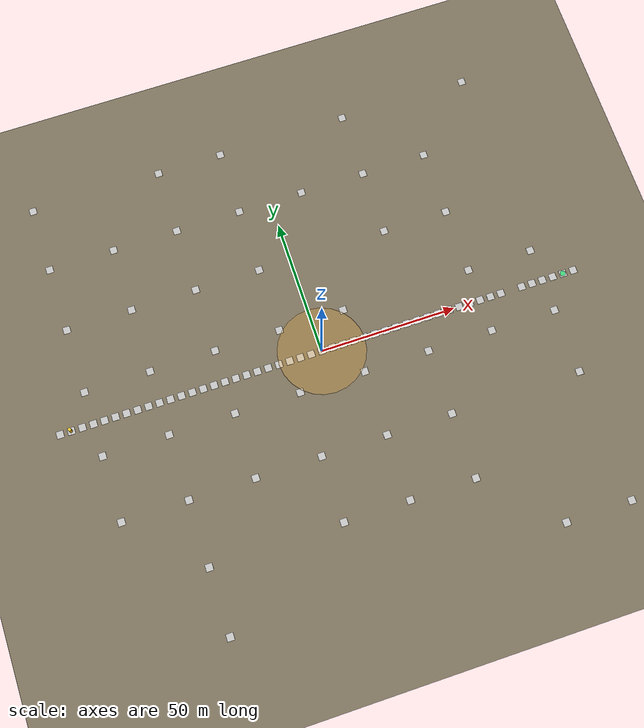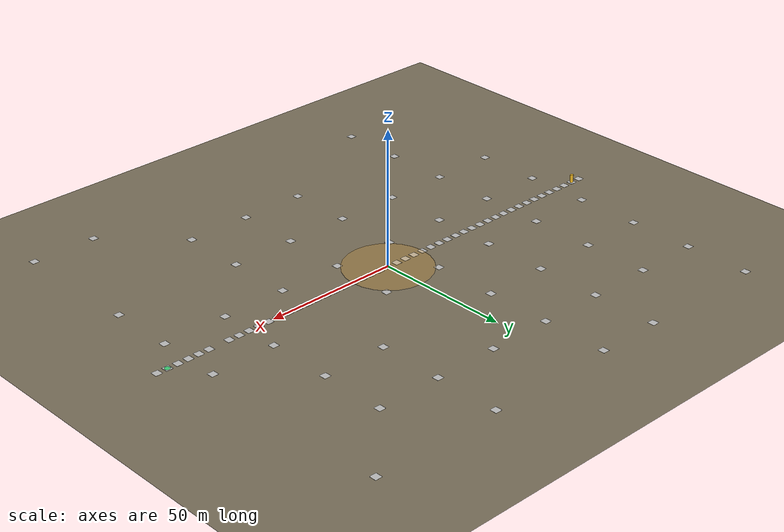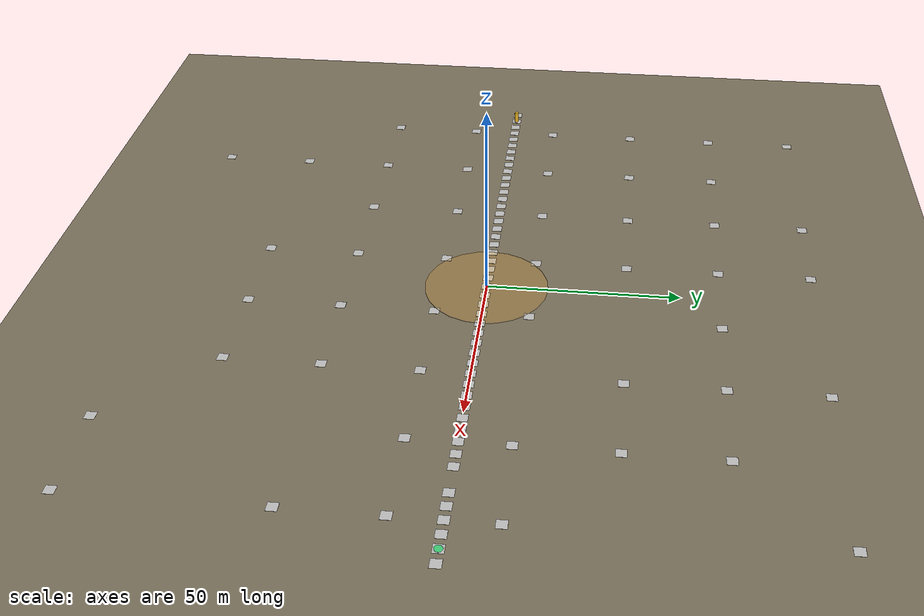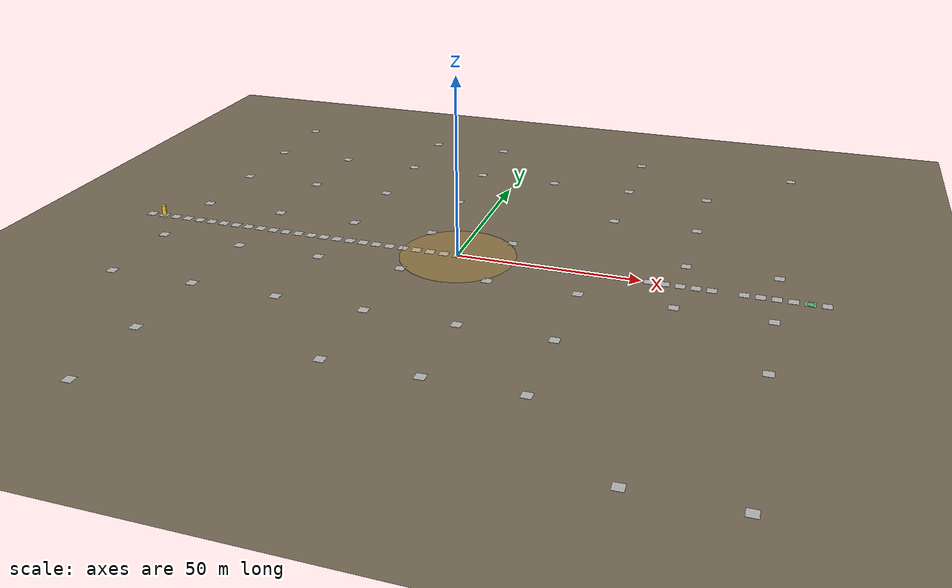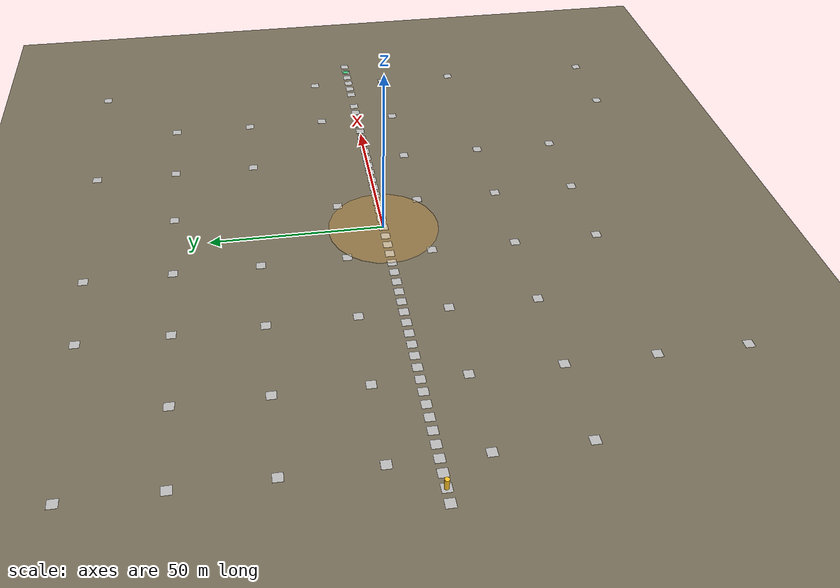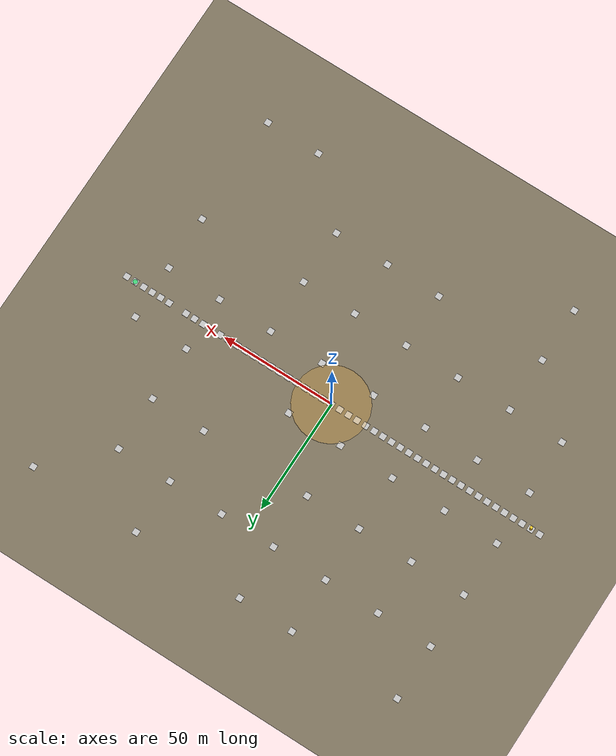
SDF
<sdf version="1.6">
 <world name="india">
  <gravity>0 0 -9.81</gravity>
  <scene>
   <ambient>0.5 0.52 0.55 1</ambient>
   <background>0.74 0.77 0.80 1</background>
   <shadows>true</shadows>
   <fog>
    <color>0.74 0.77 0.80 1</color>
    <type>linear</type>
    <start>260</start>
    <end>900</end>
    <density>0.002</density>
   </fog>
  </scene>
  <light name="sun" type="directional">
   <pose>0 0 40 0 0 0</pose>
   <diffuse>0.9 0.9 0.9 1</diffuse>
   <specular>0.2 0.2 0.2 1</specular>
   <direction>-0.4 0.3 -0.9</direction>
  </light>
  <model name="ground">
   <static>true</static>
   <link name="link">
    <collision name="c"><geometry><plane><normal>0 0 1</normal><size>400 400</size></plane></geometry></collision>
    <visual name="v">
     <geometry><plane><normal>0 0 1</normal><size>400 400</size></plane></geometry>
     <material><ambient>0.46 0.42 0.34</ambient><diffuse>0.46 0.42 0.34</diffuse></material>
    </visual>
   </link>
  </model>
  <model name="hard_patch">
   <static>true</static>
   <pose>0.000 0.000 0.03 0 0 0</pose>
   <link name="l">
    <visual name="v">
     <geometry><cylinder><radius>16.0</radius><length>0.3</length></cylinder></geometry>
     <material><ambient>0.96 0.62 0.04 0.14</ambient><diffuse>0.96 0.62 0.04 0.14</diffuse></material>
    </visual>
   </link>
  </model>
  <model name="aruco0">
   <static>true</static>
   <pose>-96.000 0.000 0.02 0 0 0</pose>
   <link name="l">
    <visual name="v">
     <geometry><box><size>2.6 2.6 0.02</size></box></geometry>
     <material>
      <script><uri>file://materials/scripts</uri><uri>file://materials/textures</uri><name>aruco/0</name></script>
     </material>
    </visual>
   </link>
  </model>
  <model name="aruco1">
   <static>true</static>
   <pose>-92.000 0.000 0.02 0 0 0</pose>
   <link name="l">
    <visual name="v">
     <geometry><box><size>2.6 2.6 0.02</size></box></geometry>
     <material>
      <script><uri>file://materials/scripts</uri><uri>file://materials/textures</uri><name>aruco/1</name></script>
     </material>
    </visual>
   </link>
  </model>
  <model name="aruco2">
   <static>true</static>
   <pose>-88.000 0.000 0.02 0 0 0</pose>
   <link name="l">
    <visual name="v">
     <geometry><box><size>2.6 2.6 0.02</size></box></geometry>
     <material>
      <script><uri>file://materials/scripts</uri><uri>file://materials/textures</uri><name>aruco/2</name></script>
     </material>
    </visual>
   </link>
  </model>
  <model name="aruco3">
   <static>true</static>
   <pose>-84.000 0.000 0.02 0 0 0</pose>
   <link name="l">
    <visual name="v">
     <geometry><box><size>2.6 2.6 0.02</size></box></geometry>
     <material>
      <script><uri>file://materials/scripts</uri><uri>file://materials/textures</uri><name>aruco/3</name></script>
     </material>
    </visual>
   </link>
  </model>
  <model name="aruco4">
   <static>true</static>
   <pose>-80.000 0.000 0.02 0 0 0</pose>
   <link name="l">
    <visual name="v">
     <geometry><box><size>2.6 2.6 0.02</size></box></geometry>
     <material>
      <script><uri>file://materials/scripts</uri><uri>file://materials/textures</uri><name>aruco/4</name></script>
     </material>
    </visual>
   </link>
  </model>
  <model name="aruco5">
   <static>true</static>
   <pose>-76.000 0.000 0.02 0 0 0</pose>
   <link name="l">
    <visual name="v">
     <geometry><box><size>2.6 2.6 0.02</size></box></geometry>
     <material>
      <script><uri>file://materials/scripts</uri><uri>file://materials/textures</uri><name>aruco/5</name></script>
     </material>
    </visual>
   </link>
  </model>
  <model name="aruco6">
   <static>true</static>
   <pose>-72.000 0.000 0.02 0 0 0</pose>
   <link name="l">
    <visual name="v">
     <geometry><box><size>2.6 2.6 0.02</size></box></geometry>
     <material>
      <script><uri>file://materials/scripts</uri><uri>file://materials/textures</uri><name>aruco/6</name></script>
     </material>
    </visual>
   </link>
  </model>
  <model name="aruco7">
   <static>true</static>
   <pose>-68.000 0.000 0.02 0 0 0</pose>
   <link name="l">
    <visual name="v">
     <geometry><box><size>2.6 2.6 0.02</size></box></geometry>
     <material>
      <script><uri>file://materials/scripts</uri><uri>file://materials/textures</uri><name>aruco/7</name></script>
     </material>
    </visual>
   </link>
  </model>
  <model name="aruco8">
   <static>true</static>
   <pose>-64.000 0.000 0.02 0 0 0</pose>
   <link name="l">
    <visual name="v">
     <geometry><box><size>2.6 2.6 0.02</size></box></geometry>
     <material>
      <script><uri>file://materials/scripts</uri><uri>file://materials/textures</uri><name>aruco/8</name></script>
     </material>
    </visual>
   </link>
  </model>
  <model name="aruco9">
   <static>true</static>
   <pose>-60.000 0.000 0.02 0 0 0</pose>
   <link name="l">
    <visual name="v">
     <geometry><box><size>2.6 2.6 0.02</size></box></geometry>
     <material>
      <script><uri>file://materials/scripts</uri><uri>file://materials/textures</uri><name>aruco/9</name></script>
     </material>
    </visual>
   </link>
  </model>
  <model name="aruco10">
   <static>true</static>
   <pose>-56.000 0.000 0.02 0 0 0</pose>
   <link name="l">
    <visual name="v">
     <geometry><box><size>2.6 2.6 0.02</size></box></geometry>
     <material>
      <script><uri>file://materials/scripts</uri><uri>file://materials/textures</uri><name>aruco/10</name></script>
     </material>
    </visual>
   </link>
  </model>
  <model name="aruco11">
   <static>true</static>
   <pose>-52.000 0.000 0.02 0 0 0</pose>
   <link name="l">
    <visual name="v">
     <geometry><box><size>2.6 2.6 0.02</size></box></geometry>
     <material>
      <script><uri>file://materials/scripts</uri><uri>file://materials/textures</uri><name>aruco/11</name></script>
     </material>
    </visual>
   </link>
  </model>
  <model name="aruco12">
   <static>true</static>
   <pose>-48.000 0.000 0.02 0 0 0</pose>
   <link name="l">
    <visual name="v">
     <geometry><box><size>2.6 2.6 0.02</size></box></geometry>
     <material>
      <script><uri>file://materials/scripts</uri><uri>file://materials/textures</uri><name>aruco/12</name></script>
     </material>
    </visual>
   </link>
  </model>
  <model name="aruco13">
   <static>true</static>
   <pose>-44.000 0.000 0.02 0 0 0</pose>
   <link name="l">
    <visual name="v">
     <geometry><box><size>2.6 2.6 0.02</size></box></geometry>
     <material>
      <script><uri>file://materials/scripts</uri><uri>file://materials/textures</uri><name>aruco/13</name></script>
     </material>
    </visual>
   </link>
  </model>
  <model name="aruco14">
   <static>true</static>
   <pose>-40.000 0.000 0.02 0 0 0</pose>
   <link name="l">
    <visual name="v">
     <geometry><box><size>2.6 2.6 0.02</size></box></geometry>
     <material>
      <script><uri>file://materials/scripts</uri><uri>file://materials/textures</uri><name>aruco/14</name></script>
     </material>
    </visual>
   </link>
  </model>
  <model name="aruco15">
   <static>true</static>
   <pose>-36.000 0.000 0.02 0 0 0</pose>
   <link name="l">
    <visual name="v">
     <geometry><box><size>2.6 2.6 0.02</size></box></geometry>
     <material>
      <script><uri>file://materials/scripts</uri><uri>file://materials/textures</uri><name>aruco/15</name></script>
     </material>
    </visual>
   </link>
  </model>
  <model name="aruco16">
   <static>true</static>
   <pose>-32.000 0.000 0.02 0 0 0</pose>
   <link name="l">
    <visual name="v">
     <geometry><box><size>2.6 2.6 0.02</size></box></geometry>
     <material>
      <script><uri>file://materials/scripts</uri><uri>file://materials/textures</uri><name>aruco/16</name></script>
     </material>
    </visual>
   </link>
  </model>
  <model name="aruco17">
   <static>true</static>
   <pose>-28.000 0.000 0.02 0 0 0</pose>
   <link name="l">
    <visual name="v">
     <geometry><box><size>2.6 2.6 0.02</size></box></geometry>
     <material>
      <script><uri>file://materials/scripts</uri><uri>file://materials/textures</uri><name>aruco/17</name></script>
     </material>
    </visual>
   </link>
  </model>
  <model name="aruco18">
   <static>true</static>
   <pose>-24.000 0.000 0.02 0 0 0</pose>
   <link name="l">
    <visual name="v">
     <geometry><box><size>2.6 2.6 0.02</size></box></geometry>
     <material>
      <script><uri>file://materials/scripts</uri><uri>file://materials/textures</uri><name>aruco/18</name></script>
     </material>
    </visual>
   </link>
  </model>
  <model name="aruco19">
   <static>true</static>
   <pose>-20.000 0.000 0.02 0 0 0</pose>
   <link name="l">
    <visual name="v">
     <geometry><box><size>2.6 2.6 0.02</size></box></geometry>
     <material>
      <script><uri>file://materials/scripts</uri><uri>file://materials/textures</uri><name>aruco/19</name></script>
     </material>
    </visual>
   </link>
  </model>
  <model name="aruco20">
   <static>true</static>
   <pose>-16.000 0.000 0.02 0 0 0</pose>
   <link name="l">
    <visual name="v">
     <geometry><box><size>2.6 2.6 0.02</size></box></geometry>
     <material>
      <script><uri>file://materials/scripts</uri><uri>file://materials/textures</uri><name>aruco/20</name></script>
     </material>
    </visual>
   </link>
  </model>
  <model name="aruco21">
   <static>true</static>
   <pose>-12.000 0.000 0.02 0 0 0</pose>
   <link name="l">
    <visual name="v">
     <geometry><box><size>2.6 2.6 0.02</size></box></geometry>
     <material>
      <script><uri>file://materials/scripts</uri><uri>file://materials/textures</uri><name>aruco/21</name></script>
     </material>
    </visual>
   </link>
  </model>
  <model name="aruco22">
   <static>true</static>
   <pose>-8.000 0.000 0.02 0 0 0</pose>
   <link name="l">
    <visual name="v">
     <geometry><box><size>2.6 2.6 0.02</size></box></geometry>
     <material>
      <script><uri>file://materials/scripts</uri><uri>file://materials/textures</uri><name>aruco/22</name></script>
     </material>
    </visual>
   </link>
  </model>
  <model name="aruco23">
   <static>true</static>
   <pose>-4.000 0.000 0.02 0 0 0</pose>
   <link name="l">
    <visual name="v">
     <geometry><box><size>2.6 2.6 0.02</size></box></geometry>
     <material>
      <script><uri>file://materials/scripts</uri><uri>file://materials/textures</uri><name>aruco/23</name></script>
     </material>
    </visual>
   </link>
  </model>
  <model name="aruco24">
   <static>true</static>
   <pose>0.000 0.000 0.02 0 0 0</pose>
   <link name="l">
    <visual name="v">
     <geometry><box><size>2.6 2.6 0.02</size></box></geometry>
     <material>
      <script><uri>file://materials/scripts</uri><uri>file://materials/textures</uri><name>aruco/24</name></script>
     </material>
    </visual>
   </link>
  </model>
  <model name="aruco25">
   <static>true</static>
   <pose>4.000 0.000 0.02 0 0 0</pose>
   <link name="l">
    <visual name="v">
     <geometry><box><size>2.6 2.6 0.02</size></box></geometry>
     <material>
      <script><uri>file://materials/scripts</uri><uri>file://materials/textures</uri><name>aruco/25</name></script>
     </material>
    </visual>
   </link>
  </model>
  <model name="aruco26">
   <static>true</static>
   <pose>8.000 0.000 0.02 0 0 0</pose>
   <link name="l">
    <visual name="v">
     <geometry><box><size>2.6 2.6 0.02</size></box></geometry>
     <material>
      <script><uri>file://materials/scripts</uri><uri>file://materials/textures</uri><name>aruco/26</name></script>
     </material>
    </visual>
   </link>
  </model>
  <model name="aruco27">
   <static>true</static>
   <pose>12.000 0.000 0.02 0 0 0</pose>
   <link name="l">
    <visual name="v">
     <geometry><box><size>2.6 2.6 0.02</size></box></geometry>
     <material>
      <script><uri>file://materials/scripts</uri><uri>file://materials/textures</uri><name>aruco/27</name></script>
     </material>
    </visual>
   </link>
  </model>
  <model name="aruco28">
   <static>true</static>
   <pose>16.000 0.000 0.02 0 0 0</pose>
   <link name="l">
    <visual name="v">
     <geometry><box><size>2.6 2.6 0.02</size></box></geometry>
     <material>
      <script><uri>file://materials/scripts</uri><uri>file://materials/textures</uri><name>aruco/28</name></script>
     </material>
    </visual>
   </link>
  </model>
  <model name="aruco29">
   <static>true</static>
   <pose>20.000 0.000 0.02 0 0 0</pose>
   <link name="l">
    <visual name="v">
     <geometry><box><size>2.6 2.6 0.02</size></box></geometry>
     <material>
      <script><uri>file://materials/scripts</uri><uri>file://materials/textures</uri><name>aruco/29</name></script>
     </material>
    </visual>
   </link>
  </model>
  <model name="aruco30">
   <static>true</static>
   <pose>24.000 0.000 0.02 0 0 0</pose>
   <link name="l">
    <visual name="v">
     <geometry><box><size>2.6 2.6 0.02</size></box></geometry>
     <material>
      <script><uri>file://materials/scripts</uri><uri>file://materials/textures</uri><name>aruco/30</name></script>
     </material>
    </visual>
   </link>
  </model>
  <model name="aruco31">
   <static>true</static>
   <pose>28.000 0.000 0.02 0 0 0</pose>
   <link name="l">
    <visual name="v">
     <geometry><box><size>2.6 2.6 0.02</size></box></geometry>
     <material>
      <script><uri>file://materials/scripts</uri><uri>file://materials/textures</uri><name>aruco/31</name></script>
     </material>
    </visual>
   </link>
  </model>
  <model name="aruco32">
   <static>true</static>
   <pose>32.000 0.000 0.02 0 0 0</pose>
   <link name="l">
    <visual name="v">
     <geometry><box><size>2.6 2.6 0.02</size></box></geometry>
     <material>
      <script><uri>file://materials/scripts</uri><uri>file://materials/textures</uri><name>aruco/32</name></script>
     </material>
    </visual>
   </link>
  </model>
  <model name="aruco33">
   <static>true</static>
   <pose>36.000 0.000 0.02 0 0 0</pose>
   <link name="l">
    <visual name="v">
     <geometry><box><size>2.6 2.6 0.02</size></box></geometry>
     <material>
      <script><uri>file://materials/scripts</uri><uri>file://materials/textures</uri><name>aruco/33</name></script>
     </material>
    </visual>
   </link>
  </model>
  <model name="aruco34">
   <static>true</static>
   <pose>40.000 0.000 0.02 0 0 0</pose>
   <link name="l">
    <visual name="v">
     <geometry><box><size>2.6 2.6 0.02</size></box></geometry>
     <material>
      <script><uri>file://materials/scripts</uri><uri>file://materials/textures</uri><name>aruco/34</name></script>
     </material>
    </visual>
   </link>
  </model>
  <model name="aruco35">
   <static>true</static>
   <pose>44.000 0.000 0.02 0 0 0</pose>
   <link name="l">
    <visual name="v">
     <geometry><box><size>2.6 2.6 0.02</size></box></geometry>
     <material>
      <script><uri>file://materials/scripts</uri><uri>file://materials/textures</uri><name>aruco/35</name></script>
     </material>
    </visual>
   </link>
  </model>
  <model name="aruco36">
   <static>true</static>
   <pose>48.000 0.000 0.02 0 0 0</pose>
   <link name="l">
    <visual name="v">
     <geometry><box><size>2.6 2.6 0.02</size></box></geometry>
     <material>
      <script><uri>file://materials/scripts</uri><uri>file://materials/textures</uri><name>aruco/36</name></script>
     </material>
    </visual>
   </link>
  </model>
  <model name="aruco37">
   <static>true</static>
   <pose>52.000 0.000 0.02 0 0 0</pose>
   <link name="l">
    <visual name="v">
     <geometry><box><size>2.6 2.6 0.02</size></box></geometry>
     <material>
      <script><uri>file://materials/scripts</uri><uri>file://materials/textures</uri><name>aruco/37</name></script>
     </material>
    </visual>
   </link>
  </model>
  <model name="aruco38">
   <static>true</static>
   <pose>56.000 0.000 0.02 0 0 0</pose>
   <link name="l">
    <visual name="v">
     <geometry><box><size>2.6 2.6 0.02</size></box></geometry>
     <material>
      <script><uri>file://materials/scripts</uri><uri>file://materials/textures</uri><name>aruco/38</name></script>
     </material>
    </visual>
   </link>
  </model>
  <model name="aruco39">
   <static>true</static>
   <pose>60.000 0.000 0.02 0 0 0</pose>
   <link name="l">
    <visual name="v">
     <geometry><box><size>2.6 2.6 0.02</size></box></geometry>
     <material>
      <script><uri>file://materials/scripts</uri><uri>file://materials/textures</uri><name>aruco/39</name></script>
     </material>
    </visual>
   </link>
  </model>
  <model name="aruco40">
   <static>true</static>
   <pose>64.000 0.000 0.02 0 0 0</pose>
   <link name="l">
    <visual name="v">
     <geometry><box><size>2.6 2.6 0.02</size></box></geometry>
     <material>
      <script><uri>file://materials/scripts</uri><uri>file://materials/textures</uri><name>aruco/40</name></script>
     </material>
    </visual>
   </link>
  </model>
  <model name="aruco41">
   <static>true</static>
   <pose>68.000 0.000 0.02 0 0 0</pose>
   <link name="l">
    <visual name="v">
     <geometry><box><size>2.6 2.6 0.02</size></box></geometry>
     <material>
      <script><uri>file://materials/scripts</uri><uri>file://materials/textures</uri><name>aruco/41</name></script>
     </material>
    </visual>
   </link>
  </model>
  <model name="aruco42">
   <static>true</static>
   <pose>76.000 0.000 0.02 0 0 0</pose>
   <link name="l">
    <visual name="v">
     <geometry><box><size>2.6 2.6 0.02</size></box></geometry>
     <material>
      <script><uri>file://materials/scripts</uri><uri>file://materials/textures</uri><name>aruco/42</name></script>
     </material>
    </visual>
   </link>
  </model>
  <model name="aruco43">
   <static>true</static>
   <pose>80.000 0.000 0.02 0 0 0</pose>
   <link name="l">
    <visual name="v">
     <geometry><box><size>2.6 2.6 0.02</size></box></geometry>
     <material>
      <script><uri>file://materials/scripts</uri><uri>file://materials/textures</uri><name>aruco/43</name></script>
     </material>
    </visual>
   </link>
  </model>
  <model name="aruco44">
   <static>true</static>
   <pose>84.000 0.000 0.02 0 0 0</pose>
   <link name="l">
    <visual name="v">
     <geometry><box><size>2.6 2.6 0.02</size></box></geometry>
     <material>
      <script><uri>file://materials/scripts</uri><uri>file://materials/textures</uri><name>aruco/44</name></script>
     </material>
    </visual>
   </link>
  </model>
  <model name="aruco45">
   <static>true</static>
   <pose>88.000 0.000 0.02 0 0 0</pose>
   <link name="l">
    <visual name="v">
     <geometry><box><size>2.6 2.6 0.02</size></box></geometry>
     <material>
      <script><uri>file://materials/scripts</uri><uri>file://materials/textures</uri><name>aruco/45</name></script>
     </material>
    </visual>
   </link>
  </model>
  <model name="aruco46">
   <static>true</static>
   <pose>92.000 0.000 0.02 0 0 0</pose>
   <link name="l">
    <visual name="v">
     <geometry><box><size>2.6 2.6 0.02</size></box></geometry>
     <material>
      <script><uri>file://materials/scripts</uri><uri>file://materials/textures</uri><name>aruco/46</name></script>
     </material>
    </visual>
   </link>
  </model>
  <model name="aruco47">
   <static>true</static>
   <pose>96.000 0.000 0.02 0 0 0</pose>
   <link name="l">
    <visual name="v">
     <geometry><box><size>2.6 2.6 0.02</size></box></geometry>
     <material>
      <script><uri>file://materials/scripts</uri><uri>file://materials/textures</uri><name>aruco/47</name></script>
     </material>
    </visual>
   </link>
  </model>
  <model name="aruco48">
   <static>true</static>
   <pose>-60.000 -84.000 0.02 0 0 0</pose>
   <link name="l">
    <visual name="v">
     <geometry><box><size>2.6 2.6 0.02</size></box></geometry>
     <material>
      <script><uri>file://materials/scripts</uri><uri>file://materials/textures</uri><name>aruco/48</name></script>
     </material>
    </visual>
   </link>
  </model>
  <model name="aruco49">
   <static>true</static>
   <pose>60.000 -84.000 0.02 0 0 0</pose>
   <link name="l">
    <visual name="v">
     <geometry><box><size>2.6 2.6 0.02</size></box></geometry>
     <material>
      <script><uri>file://materials/scripts</uri><uri>file://materials/textures</uri><name>aruco/49</name></script>
     </material>
    </visual>
   </link>
  </model>
  <model name="aruco50">
   <static>true</static>
   <pose>84.000 -84.000 0.02 0 0 0</pose>
   <link name="l">
    <visual name="v">
     <geometry><box><size>2.6 2.6 0.02</size></box></geometry>
     <material>
      <script><uri>file://materials/scripts</uri><uri>file://materials/textures</uri><name>aruco/50</name></script>
     </material>
    </visual>
   </link>
  </model>
  <model name="aruco51">
   <static>true</static>
   <pose>-60.000 -60.000 0.02 0 0 0</pose>
   <link name="l">
    <visual name="v">
     <geometry><box><size>2.6 2.6 0.02</size></box></geometry>
     <material>
      <script><uri>file://materials/scripts</uri><uri>file://materials/textures</uri><name>aruco/51</name></script>
     </material>
    </visual>
   </link>
  </model>
  <model name="aruco52">
   <static>true</static>
   <pose>-12.000 -60.000 0.02 0 0 0</pose>
   <link name="l">
    <visual name="v">
     <geometry><box><size>2.6 2.6 0.02</size></box></geometry>
     <material>
      <script><uri>file://materials/scripts</uri><uri>file://materials/textures</uri><name>aruco/52</name></script>
     </material>
    </visual>
   </link>
  </model>
  <model name="aruco53">
   <static>true</static>
   <pose>12.000 -60.000 0.02 0 0 0</pose>
   <link name="l">
    <visual name="v">
     <geometry><box><size>2.6 2.6 0.02</size></box></geometry>
     <material>
      <script><uri>file://materials/scripts</uri><uri>file://materials/textures</uri><name>aruco/53</name></script>
     </material>
    </visual>
   </link>
  </model>
  <model name="aruco54">
   <static>true</static>
   <pose>36.000 -60.000 0.02 0 0 0</pose>
   <link name="l">
    <visual name="v">
     <geometry><box><size>2.6 2.6 0.02</size></box></geometry>
     <material>
      <script><uri>file://materials/scripts</uri><uri>file://materials/textures</uri><name>aruco/54</name></script>
     </material>
    </visual>
   </link>
  </model>
  <model name="aruco55">
   <static>true</static>
   <pose>-84.000 -36.000 0.02 0 0 0</pose>
   <link name="l">
    <visual name="v">
     <geometry><box><size>2.6 2.6 0.02</size></box></geometry>
     <material>
      <script><uri>file://materials/scripts</uri><uri>file://materials/textures</uri><name>aruco/55</name></script>
     </material>
    </visual>
   </link>
  </model>
  <model name="aruco56">
   <static>true</static>
   <pose>-60.000 -36.000 0.02 0 0 0</pose>
   <link name="l">
    <visual name="v">
     <geometry><box><size>2.6 2.6 0.02</size></box></geometry>
     <material>
      <script><uri>file://materials/scripts</uri><uri>file://materials/textures</uri><name>aruco/56</name></script>
     </material>
    </visual>
   </link>
  </model>
  <model name="aruco57">
   <static>true</static>
   <pose>-36.000 -36.000 0.02 0 0 0</pose>
   <link name="l">
    <visual name="v">
     <geometry><box><size>2.6 2.6 0.02</size></box></geometry>
     <material>
      <script><uri>file://materials/scripts</uri><uri>file://materials/textures</uri><name>aruco/57</name></script>
     </material>
    </visual>
   </link>
  </model>
  <model name="aruco58">
   <static>true</static>
   <pose>-12.000 -36.000 0.02 0 0 0</pose>
   <link name="l">
    <visual name="v">
     <geometry><box><size>2.6 2.6 0.02</size></box></geometry>
     <material>
      <script><uri>file://materials/scripts</uri><uri>file://materials/textures</uri><name>aruco/58</name></script>
     </material>
    </visual>
   </link>
  </model>
  <model name="aruco59">
   <static>true</static>
   <pose>12.000 -36.000 0.02 0 0 0</pose>
   <link name="l">
    <visual name="v">
     <geometry><box><size>2.6 2.6 0.02</size></box></geometry>
     <material>
      <script><uri>file://materials/scripts</uri><uri>file://materials/textures</uri><name>aruco/59</name></script>
     </material>
    </visual>
   </link>
  </model>
  <model name="aruco60">
   <static>true</static>
   <pose>36.000 -36.000 0.02 0 0 0</pose>
   <link name="l">
    <visual name="v">
     <geometry><box><size>2.6 2.6 0.02</size></box></geometry>
     <material>
      <script><uri>file://materials/scripts</uri><uri>file://materials/textures</uri><name>aruco/60</name></script>
     </material>
    </visual>
   </link>
  </model>
  <model name="aruco61">
   <static>true</static>
   <pose>84.000 -36.000 0.02 0 0 0</pose>
   <link name="l">
    <visual name="v">
     <geometry><box><size>2.6 2.6 0.02</size></box></geometry>
     <material>
      <script><uri>file://materials/scripts</uri><uri>file://materials/textures</uri><name>aruco/61</name></script>
     </material>
    </visual>
   </link>
  </model>
  <model name="aruco62">
   <static>true</static>
   <pose>-84.000 -12.000 0.02 0 0 0</pose>
   <link name="l">
    <visual name="v">
     <geometry><box><size>2.6 2.6 0.02</size></box></geometry>
     <material>
      <script><uri>file://materials/scripts</uri><uri>file://materials/textures</uri><name>aruco/62</name></script>
     </material>
    </visual>
   </link>
  </model>
  <model name="aruco63">
   <static>true</static>
   <pose>-60.000 -12.000 0.02 0 0 0</pose>
   <link name="l">
    <visual name="v">
     <geometry><box><size>2.6 2.6 0.02</size></box></geometry>
     <material>
      <script><uri>file://materials/scripts</uri><uri>file://materials/textures</uri><name>aruco/63</name></script>
     </material>
    </visual>
   </link>
  </model>
  <model name="aruco64">
   <static>true</static>
   <pose>-36.000 -12.000 0.02 0 0 0</pose>
   <link name="l">
    <visual name="v">
     <geometry><box><size>2.6 2.6 0.02</size></box></geometry>
     <material>
      <script><uri>file://materials/scripts</uri><uri>file://materials/textures</uri><name>aruco/64</name></script>
     </material>
    </visual>
   </link>
  </model>
  <model name="aruco65">
   <static>true</static>
   <pose>-12.000 -12.000 0.02 0 0 0</pose>
   <link name="l">
    <visual name="v">
     <geometry><box><size>2.6 2.6 0.02</size></box></geometry>
     <material>
      <script><uri>file://materials/scripts</uri><uri>file://materials/textures</uri><name>aruco/65</name></script>
     </material>
    </visual>
   </link>
  </model>
  <model name="aruco66">
   <static>true</static>
   <pose>12.000 -12.000 0.02 0 0 0</pose>
   <link name="l">
    <visual name="v">
     <geometry><box><size>2.6 2.6 0.02</size></box></geometry>
     <material>
      <script><uri>file://materials/scripts</uri><uri>file://materials/textures</uri><name>aruco/66</name></script>
     </material>
    </visual>
   </link>
  </model>
  <model name="aruco67">
   <static>true</static>
   <pose>36.000 -12.000 0.02 0 0 0</pose>
   <link name="l">
    <visual name="v">
     <geometry><box><size>2.6 2.6 0.02</size></box></geometry>
     <material>
      <script><uri>file://materials/scripts</uri><uri>file://materials/textures</uri><name>aruco/67</name></script>
     </material>
    </visual>
   </link>
  </model>
  <model name="aruco68">
   <static>true</static>
   <pose>60.000 -12.000 0.02 0 0 0</pose>
   <link name="l">
    <visual name="v">
     <geometry><box><size>2.6 2.6 0.02</size></box></geometry>
     <material>
      <script><uri>file://materials/scripts</uri><uri>file://materials/textures</uri><name>aruco/68</name></script>
     </material>
    </visual>
   </link>
  </model>
  <model name="aruco69">
   <static>true</static>
   <pose>84.000 -12.000 0.02 0 0 0</pose>
   <link name="l">
    <visual name="v">
     <geometry><box><size>2.6 2.6 0.02</size></box></geometry>
     <material>
      <script><uri>file://materials/scripts</uri><uri>file://materials/textures</uri><name>aruco/69</name></script>
     </material>
    </visual>
   </link>
  </model>
  <model name="aruco70">
   <static>true</static>
   <pose>-84.000 12.000 0.02 0 0 0</pose>
   <link name="l">
    <visual name="v">
     <geometry><box><size>2.6 2.6 0.02</size></box></geometry>
     <material>
      <script><uri>file://materials/scripts</uri><uri>file://materials/textures</uri><name>aruco/70</name></script>
     </material>
    </visual>
   </link>
  </model>
  <model name="aruco71">
   <static>true</static>
   <pose>-60.000 12.000 0.02 0 0 0</pose>
   <link name="l">
    <visual name="v">
     <geometry><box><size>2.6 2.6 0.02</size></box></geometry>
     <material>
      <script><uri>file://materials/scripts</uri><uri>file://materials/textures</uri><name>aruco/71</name></script>
     </material>
    </visual>
   </link>
  </model>
  <model name="aruco72">
   <static>true</static>
   <pose>-36.000 12.000 0.02 0 0 0</pose>
   <link name="l">
    <visual name="v">
     <geometry><box><size>2.6 2.6 0.02</size></box></geometry>
     <material>
      <script><uri>file://materials/scripts</uri><uri>file://materials/textures</uri><name>aruco/72</name></script>
     </material>
    </visual>
   </link>
  </model>
  <model name="aruco73">
   <static>true</static>
   <pose>-12.000 12.000 0.02 0 0 0</pose>
   <link name="l">
    <visual name="v">
     <geometry><box><size>2.6 2.6 0.02</size></box></geometry>
     <material>
      <script><uri>file://materials/scripts</uri><uri>file://materials/textures</uri><name>aruco/73</name></script>
     </material>
    </visual>
   </link>
  </model>
  <model name="aruco74">
   <static>true</static>
   <pose>12.000 12.000 0.02 0 0 0</pose>
   <link name="l">
    <visual name="v">
     <geometry><box><size>2.6 2.6 0.02</size></box></geometry>
     <material>
      <script><uri>file://materials/scripts</uri><uri>file://materials/textures</uri><name>aruco/74</name></script>
     </material>
    </visual>
   </link>
  </model>
  <model name="aruco75">
   <static>true</static>
   <pose>60.000 12.000 0.02 0 0 0</pose>
   <link name="l">
    <visual name="v">
     <geometry><box><size>2.6 2.6 0.02</size></box></geometry>
     <material>
      <script><uri>file://materials/scripts</uri><uri>file://materials/textures</uri><name>aruco/75</name></script>
     </material>
    </visual>
   </link>
  </model>
  <model name="aruco76">
   <static>true</static>
   <pose>84.000 12.000 0.02 0 0 0</pose>
   <link name="l">
    <visual name="v">
     <geometry><box><size>2.6 2.6 0.02</size></box></geometry>
     <material>
      <script><uri>file://materials/scripts</uri><uri>file://materials/textures</uri><name>aruco/76</name></script>
     </material>
    </visual>
   </link>
  </model>
  <model name="aruco77">
   <static>true</static>
   <pose>-84.000 36.000 0.02 0 0 0</pose>
   <link name="l">
    <visual name="v">
     <geometry><box><size>2.6 2.6 0.02</size></box></geometry>
     <material>
      <script><uri>file://materials/scripts</uri><uri>file://materials/textures</uri><name>aruco/77</name></script>
     </material>
    </visual>
   </link>
  </model>
  <model name="aruco78">
   <static>true</static>
   <pose>-60.000 36.000 0.02 0 0 0</pose>
   <link name="l">
    <visual name="v">
     <geometry><box><size>2.6 2.6 0.02</size></box></geometry>
     <material>
      <script><uri>file://materials/scripts</uri><uri>file://materials/textures</uri><name>aruco/78</name></script>
     </material>
    </visual>
   </link>
  </model>
  <model name="aruco79">
   <static>true</static>
   <pose>-36.000 36.000 0.02 0 0 0</pose>
   <link name="l">
    <visual name="v">
     <geometry><box><size>2.6 2.6 0.02</size></box></geometry>
     <material>
      <script><uri>file://materials/scripts</uri><uri>file://materials/textures</uri><name>aruco/79</name></script>
     </material>
    </visual>
   </link>
  </model>
  <model name="aruco80">
   <static>true</static>
   <pose>-12.000 36.000 0.02 0 0 0</pose>
   <link name="l">
    <visual name="v">
     <geometry><box><size>2.6 2.6 0.02</size></box></geometry>
     <material>
      <script><uri>file://materials/scripts</uri><uri>file://materials/textures</uri><name>aruco/80</name></script>
     </material>
    </visual>
   </link>
  </model>
  <model name="aruco81">
   <static>true</static>
   <pose>36.000 36.000 0.02 0 0 0</pose>
   <link name="l">
    <visual name="v">
     <geometry><box><size>2.6 2.6 0.02</size></box></geometry>
     <material>
      <script><uri>file://materials/scripts</uri><uri>file://materials/textures</uri><name>aruco/81</name></script>
     </material>
    </visual>
   </link>
  </model>
  <model name="aruco82">
   <static>true</static>
   <pose>60.000 36.000 0.02 0 0 0</pose>
   <link name="l">
    <visual name="v">
     <geometry><box><size>2.6 2.6 0.02</size></box></geometry>
     <material>
      <script><uri>file://materials/scripts</uri><uri>file://materials/textures</uri><name>aruco/82</name></script>
     </material>
    </visual>
   </link>
  </model>
  <model name="aruco83">
   <static>true</static>
   <pose>-84.000 60.000 0.02 0 0 0</pose>
   <link name="l">
    <visual name="v">
     <geometry><box><size>2.6 2.6 0.02</size></box></geometry>
     <material>
      <script><uri>file://materials/scripts</uri><uri>file://materials/textures</uri><name>aruco/83</name></script>
     </material>
    </visual>
   </link>
  </model>
  <model name="aruco84">
   <static>true</static>
   <pose>-60.000 60.000 0.02 0 0 0</pose>
   <link name="l">
    <visual name="v">
     <geometry><box><size>2.6 2.6 0.02</size></box></geometry>
     <material>
      <script><uri>file://materials/scripts</uri><uri>file://materials/textures</uri><name>aruco/84</name></script>
     </material>
    </visual>
   </link>
  </model>
  <model name="aruco85">
   <static>true</static>
   <pose>-36.000 60.000 0.02 0 0 0</pose>
   <link name="l">
    <visual name="v">
     <geometry><box><size>2.6 2.6 0.02</size></box></geometry>
     <material>
      <script><uri>file://materials/scripts</uri><uri>file://materials/textures</uri><name>aruco/85</name></script>
     </material>
    </visual>
   </link>
  </model>
  <model name="aruco86">
   <static>true</static>
   <pose>-12.000 60.000 0.02 0 0 0</pose>
   <link name="l">
    <visual name="v">
     <geometry><box><size>2.6 2.6 0.02</size></box></geometry>
     <material>
      <script><uri>file://materials/scripts</uri><uri>file://materials/textures</uri><name>aruco/86</name></script>
     </material>
    </visual>
   </link>
  </model>
  <model name="aruco87">
   <static>true</static>
   <pose>12.000 60.000 0.02 0 0 0</pose>
   <link name="l">
    <visual name="v">
     <geometry><box><size>2.6 2.6 0.02</size></box></geometry>
     <material>
      <script><uri>file://materials/scripts</uri><uri>file://materials/textures</uri><name>aruco/87</name></script>
     </material>
    </visual>
   </link>
  </model>
  <model name="aruco88">
   <static>true</static>
   <pose>36.000 60.000 0.02 0 0 0</pose>
   <link name="l">
    <visual name="v">
     <geometry><box><size>2.6 2.6 0.02</size></box></geometry>
     <material>
      <script><uri>file://materials/scripts</uri><uri>file://materials/textures</uri><name>aruco/88</name></script>
     </material>
    </visual>
   </link>
  </model>
  <model name="aruco89">
   <static>true</static>
   <pose>60.000 60.000 0.02 0 0 0</pose>
   <link name="l">
    <visual name="v">
     <geometry><box><size>2.6 2.6 0.02</size></box></geometry>
     <material>
      <script><uri>file://materials/scripts</uri><uri>file://materials/textures</uri><name>aruco/89</name></script>
     </material>
    </visual>
   </link>
  </model>
  <model name="aruco90">
   <static>true</static>
   <pose>-84.000 84.000 0.02 0 0 0</pose>
   <link name="l">
    <visual name="v">
     <geometry><box><size>2.6 2.6 0.02</size></box></geometry>
     <material>
      <script><uri>file://materials/scripts</uri><uri>file://materials/textures</uri><name>aruco/90</name></script>
     </material>
    </visual>
   </link>
  </model>
  <model name="aruco91">
   <static>true</static>
   <pose>-36.000 84.000 0.02 0 0 0</pose>
   <link name="l">
    <visual name="v">
     <geometry><box><size>2.6 2.6 0.02</size></box></geometry>
     <material>
      <script><uri>file://materials/scripts</uri><uri>file://materials/textures</uri><name>aruco/91</name></script>
     </material>
    </visual>
   </link>
  </model>
  <model name="aruco92">
   <static>true</static>
   <pose>-12.000 84.000 0.02 0 0 0</pose>
   <link name="l">
    <visual name="v">
     <geometry><box><size>2.6 2.6 0.02</size></box></geometry>
     <material>
      <script><uri>file://materials/scripts</uri><uri>file://materials/textures</uri><name>aruco/92</name></script>
     </material>
    </visual>
   </link>
  </model>
  <model name="aruco93">
   <static>true</static>
   <pose>36.000 84.000 0.02 0 0 0</pose>
   <link name="l">
    <visual name="v">
     <geometry><box><size>2.6 2.6 0.02</size></box></geometry>
     <material>
      <script><uri>file://materials/scripts</uri><uri>file://materials/textures</uri><name>aruco/93</name></script>
     </material>
    </visual>
   </link>
  </model>
  <model name="aruco94">
   <static>true</static>
   <pose>84.000 84.000 0.02 0 0 0</pose>
   <link name="l">
    <visual name="v">
     <geometry><box><size>2.6 2.6 0.02</size></box></geometry>
     <material>
      <script><uri>file://materials/scripts</uri><uri>file://materials/textures</uri><name>aruco/94</name></script>
     </material>
    </visual>
   </link>
  </model>
  <model name="target_B">
   <static>true</static>
   <pose>-92.000 0.000 1.500 0 0 0</pose>
   <link name="l">
    <collision name="c">
     <geometry><cylinder><radius>0.6</radius><length>3.0</length></cylinder></geometry>
    </collision>
    <visual name="v">
     <geometry><cylinder><radius>0.6</radius><length>3.0</length></cylinder></geometry>
     <material><ambient>0.98 0.75 0.14 1</ambient><diffuse>0.98 0.75 0.14 1</diffuse></material>
    </visual>
   </link>
  </model>
  <model name="start_pad">
   <static>true</static>
   <pose>92.000 0.000 0.020 0 0 0</pose>
   <link name="l">
    <collision name="c">
     <geometry><cylinder><radius>1.0</radius><length>0.04</length></cylinder></geometry>
    </collision>
    <visual name="v">
     <geometry><cylinder><radius>1.0</radius><length>0.04</length></cylinder></geometry>
     <material><ambient>0.2 0.83 0.44 0.85</ambient><diffuse>0.2 0.83 0.44 0.85</diffuse></material>
    </visual>
   </link>
  </model>
  <plugin name="gazebo_ros_state" filename="libgazebo_ros_state.so">
   <ros><namespace>/gazebo</namespace></ros>
   <update_rate>0.0</update_rate>
  </plugin>
  <physics name="ode" type="ode">
   <max_step_size>0.004</max_step_size>
   <real_time_update_rate>250</real_time_update_rate>
  </physics>
 </world>
</sdf>
